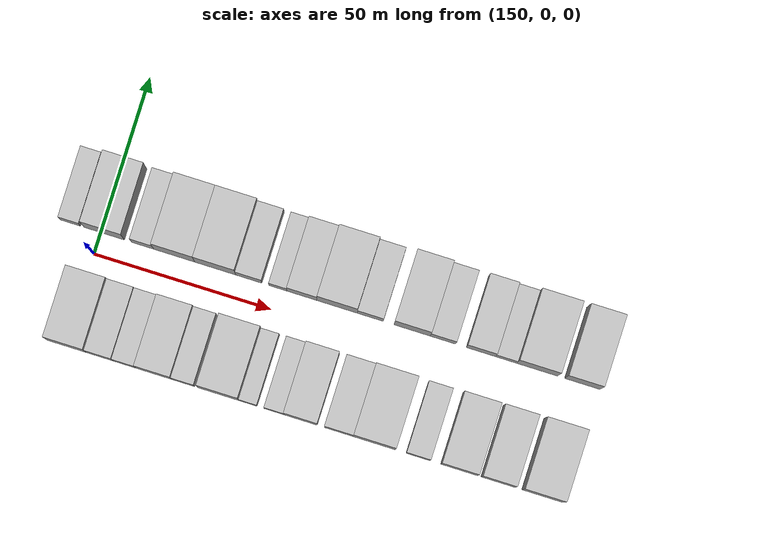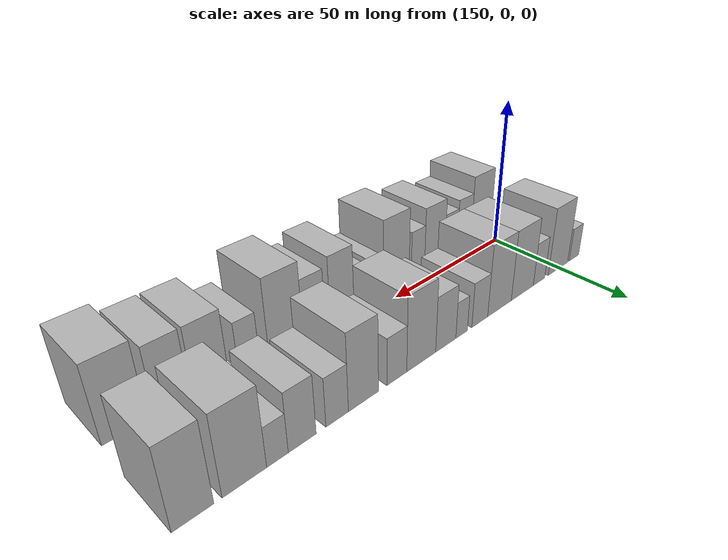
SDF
<sdf version="1.6">
 <world name="default">
  <model name="building_16">
   <static>1</static>
   <pose>141.3605 16.0000 0 0.000000 0.000000 1.570796</pose>
   <link name="link">
    <pose>0 0 6.00 0 0 0</pose>
    <collision name="collision"><geometry><box><size>20.0000 5.8034 12.0000</size></box></geometry></collision>
    <visual name="visual">
     <cast_shadows>0</cast_shadows>
     <geometry><box><size>20.0000 5.8034 12.0000</size></box></geometry>
     <material>
      <script>
       <uri>model://HANNAS_wall/materials/scripts</uri>
       <uri>model://HANNAS_wall/materials/textures</uri>
       <name>vrc/HANNAS_wall</name>
      </script>
     </material>
    </visual>
   </link>
  </model>
  <model name="building_17">
   <static>1</static>
   <pose>150.9504 16.0000 0 0.000000 0.000000 1.570796</pose>
   <link name="link">
    <pose>0 0 12.00 0 0 0</pose>
    <collision name="collision"><geometry><box><size>20.0000 11.3764 24.0000</size></box></geometry></collision>
    <visual name="visual">
     <cast_shadows>0</cast_shadows>
     <geometry><box><size>20.0000 11.3764 24.0000</size></box></geometry>
     <material>
      <script>
       <uri>model://HANNAS_wall/materials/scripts</uri>
       <uri>model://HANNAS_wall/materials/textures</uri>
       <name>vrc/HANNAS_wall</name>
      </script>
     </material>
    </visual>
   </link>
  </model>
  <model name="building_18">
   <static>1</static>
   <pose>161.7898 16.0000 0 0.000000 0.000000 1.570796</pose>
   <link name="link">
    <pose>0 0 7.50 0 0 0</pose>
    <collision name="collision"><geometry><box><size>20.0000 6.3024 15.0000</size></box></geometry></collision>
    <visual name="visual">
     <cast_shadows>0</cast_shadows>
     <geometry><box><size>20.0000 6.3024 15.0000</size></box></geometry>
     <material>
      <script>
       <uri>model://HANNAS_wall/materials/scripts</uri>
       <uri>model://HANNAS_wall/materials/textures</uri>
       <name>vrc/HANNAS_wall</name>
      </script>
     </material>
    </visual>
   </link>
  </model>
  <model name="building_19">
   <static>1</static>
   <pose>170.7327 16.0000 0 0.000000 0.000000 1.570796</pose>
   <link name="link">
    <pose>0 0 12.00 0 0 0</pose>
    <collision name="collision"><geometry><box><size>20.0000 11.5834 24.0000</size></box></geometry></collision>
    <visual name="visual">
     <cast_shadows>0</cast_shadows>
     <geometry><box><size>20.0000 11.5834 24.0000</size></box></geometry>
     <material>
      <script>
       <uri>model://HANNAS_wall/materials/scripts</uri>
       <uri>model://HANNAS_wall/materials/textures</uri>
       <name>vrc/HANNAS_wall</name>
      </script>
     </material>
    </visual>
   </link>
  </model>
  <model name="building_20">
   <static>1</static>
   <pose>182.3128 16.0000 0 0.000000 0.000000 1.570796</pose>
   <link name="link">
    <pose>0 0 12.00 0 0 0</pose>
    <collision name="collision"><geometry><box><size>20.0000 11.5768 24.0000</size></box></geometry></collision>
    <visual name="visual">
     <cast_shadows>0</cast_shadows>
     <geometry><box><size>20.0000 11.5768 24.0000</size></box></geometry>
     <material>
      <script>
       <uri>model://HANNAS_wall/materials/scripts</uri>
       <uri>model://HANNAS_wall/materials/textures</uri>
       <name>vrc/HANNAS_wall</name>
      </script>
     </material>
    </visual>
   </link>
  </model>
  <model name="building_21">
   <static>1</static>
   <pose>191.7797 16.0000 0 0.000000 0.000000 1.570796</pose>
   <link name="link">
    <pose>0 0 7.50 0 0 0</pose>
    <collision name="collision"><geometry><box><size>20.0000 7.3570 15.0000</size></box></geometry></collision>
    <visual name="visual">
     <cast_shadows>0</cast_shadows>
     <geometry><box><size>20.0000 7.3570 15.0000</size></box></geometry>
     <material>
      <script>
       <uri>model://HANNAS_wall/materials/scripts</uri>
       <uri>model://HANNAS_wall/materials/textures</uri>
       <name>vrc/HANNAS_wall</name>
      </script>
     </material>
    </visual>
   </link>
  </model>
  <model name="building_22">
   <static>1</static>
   <pose>199.9924 16.0000 0 0.000000 0.000000 1.570796</pose>
   <link name="link">
    <pose>0 0 6.00 0 0 0</pose>
    <collision name="collision"><geometry><box><size>20.0000 5.0683 12.0000</size></box></geometry></collision>
    <visual name="visual">
     <cast_shadows>0</cast_shadows>
     <geometry><box><size>20.0000 5.0683 12.0000</size></box></geometry>
     <material>
      <script>
       <uri>model://HANNAS_wall/materials/scripts</uri>
       <uri>model://HANNAS_wall/materials/textures</uri>
       <name>vrc/HANNAS_wall</name>
      </script>
     </material>
    </visual>
   </link>
  </model>
  <model name="building_23">
   <static>1</static>
   <pose>206.7731 16.0000 0 0.000000 0.000000 1.570796</pose>
   <link name="link">
    <pose>0 0 9.00 0 0 0</pose>
    <collision name="collision"><geometry><box><size>20.0000 8.4931 18.0000</size></box></geometry></collision>
    <visual name="visual">
     <cast_shadows>0</cast_shadows>
     <geometry><box><size>20.0000 8.4931 18.0000</size></box></geometry>
     <material>
      <script>
       <uri>model://HANNAS_wall/materials/scripts</uri>
       <uri>model://HANNAS_wall/materials/textures</uri>
       <name>vrc/HANNAS_wall</name>
      </script>
     </material>
    </visual>
   </link>
  </model>
  <model name="building_24">
   <static>1</static>
   <pose>216.7002 16.0000 0 0.000000 0.000000 1.570796</pose>
   <link name="link">
    <pose>0 0 12.00 0 0 0</pose>
    <collision name="collision"><geometry><box><size>20.0000 11.3611 24.0000</size></box></geometry></collision>
    <visual name="visual">
     <cast_shadows>0</cast_shadows>
     <geometry><box><size>20.0000 11.3611 24.0000</size></box></geometry>
     <material>
      <script>
       <uri>model://HANNAS_wall/materials/scripts</uri>
       <uri>model://HANNAS_wall/materials/textures</uri>
       <name>vrc/HANNAS_wall</name>
      </script>
     </material>
    </visual>
   </link>
  </model>
  <model name="building_25">
   <static>1</static>
   <pose>226.0487 16.0000 0 0.000000 0.000000 1.570796</pose>
   <link name="link">
    <pose>0 0 7.50 0 0 0</pose>
    <collision name="collision"><geometry><box><size>20.0000 7.3358 15.0000</size></box></geometry></collision>
    <visual name="visual">
     <cast_shadows>0</cast_shadows>
     <geometry><box><size>20.0000 7.3358 15.0000</size></box></geometry>
     <material>
      <script>
       <uri>model://HANNAS_wall/materials/scripts</uri>
       <uri>model://HANNAS_wall/materials/textures</uri>
       <name>vrc/HANNAS_wall</name>
      </script>
     </material>
    </visual>
   </link>
  </model>
  <model name="building_26">
   <static>1</static>
   <pose>237.8275 16.0000 0 0.000000 0.000000 1.570796</pose>
   <link name="link">
    <pose>0 0 12.00 0 0 0</pose>
    <collision name="collision"><geometry><box><size>20.0000 10.2218 24.0000</size></box></geometry></collision>
    <visual name="visual">
     <cast_shadows>0</cast_shadows>
     <geometry><box><size>20.0000 10.2218 24.0000</size></box></geometry>
     <material>
      <script>
       <uri>model://HANNAS_wall/materials/scripts</uri>
       <uri>model://HANNAS_wall/materials/textures</uri>
       <name>vrc/HANNAS_wall</name>
      </script>
     </material>
    </visual>
   </link>
  </model>
  <model name="building_27">
   <static>1</static>
   <pose>246.5218 16.0000 0 0.000000 0.000000 1.570796</pose>
   <link name="link">
    <pose>0 0 7.50 0 0 0</pose>
    <collision name="collision"><geometry><box><size>20.0000 7.1667 15.0000</size></box></geometry></collision>
    <visual name="visual">
     <cast_shadows>0</cast_shadows>
     <geometry><box><size>20.0000 7.1667 15.0000</size></box></geometry>
     <material>
      <script>
       <uri>model://HANNAS_wall/materials/scripts</uri>
       <uri>model://HANNAS_wall/materials/textures</uri>
       <name>vrc/HANNAS_wall</name>
      </script>
     </material>
    </visual>
   </link>
  </model>
  <model name="building_28">
   <static>1</static>
   <pose>257.1931 16.0000 0 0.000000 0.000000 1.570796</pose>
   <link name="link">
    <pose>0 0 9.00 0 0 0</pose>
    <collision name="collision"><geometry><box><size>20.0000 8.1760 18.0000</size></box></geometry></collision>
    <visual name="visual">
     <cast_shadows>0</cast_shadows>
     <geometry><box><size>20.0000 8.1760 18.0000</size></box></geometry>
     <material>
      <script>
       <uri>model://HANNAS_wall/materials/scripts</uri>
       <uri>model://HANNAS_wall/materials/textures</uri>
       <name>vrc/HANNAS_wall</name>
      </script>
     </material>
    </visual>
   </link>
  </model>
  <model name="building_29">
   <static>1</static>
   <pose>264.2778 16.0000 0 0.000000 0.000000 1.570796</pose>
   <link name="link">
    <pose>0 0 6.00 0 0 0</pose>
    <collision name="collision"><geometry><box><size>20.0000 5.9934 12.0000</size></box></geometry></collision>
    <visual name="visual">
     <cast_shadows>0</cast_shadows>
     <geometry><box><size>20.0000 5.9934 12.0000</size></box></geometry>
     <material>
      <script>
       <uri>model://HANNAS_wall/materials/scripts</uri>
       <uri>model://HANNAS_wall/materials/textures</uri>
       <name>vrc/HANNAS_wall</name>
      </script>
     </material>
    </visual>
   </link>
  </model>
  <model name="building_30">
   <static>1</static>
   <pose>273.0438 16.0000 0 0.000000 0.000000 1.570796</pose>
   <link name="link">
    <pose>0 0 12.00 0 0 0</pose>
    <collision name="collision"><geometry><box><size>20.0000 11.5386 24.0000</size></box></geometry></collision>
    <visual name="visual">
     <cast_shadows>0</cast_shadows>
     <geometry><box><size>20.0000 11.5386 24.0000</size></box></geometry>
     <material>
      <script>
       <uri>model://HANNAS_wall/materials/scripts</uri>
       <uri>model://HANNAS_wall/materials/textures</uri>
       <name>vrc/HANNAS_wall</name>
      </script>
     </material>
    </visual>
   </link>
  </model>
  <model name="building_31">
   <static>1</static>
   <pose>285.7618 16.0000 0 0.000000 0.000000 1.570796</pose>
   <link name="link">
    <pose>0 0 12.00 0 0 0</pose>
    <collision name="collision"><geometry><box><size>20.0000 9.8973 24.0000</size></box></geometry></collision>
    <visual name="visual">
     <cast_shadows>0</cast_shadows>
     <geometry><box><size>20.0000 9.8973 24.0000</size></box></geometry>
     <material>
      <script>
       <uri>model://HANNAS_wall/materials/scripts</uri>
       <uri>model://HANNAS_wall/materials/textures</uri>
       <name>vrc/HANNAS_wall</name>
      </script>
     </material>
    </visual>
   </link>
  </model>
  <model name="building_46">
   <static>1</static>
   <pose>150.7039 -16.0000 0 0.000000 0.000000 1.570796</pose>
   <link name="link">
    <pose>0 0 12.00 0 0 0</pose>
    <collision name="collision"><geometry><box><size>20.0000 11.0838 24.0000</size></box></geometry></collision>
    <visual name="visual">
     <cast_shadows>0</cast_shadows>
     <geometry><box><size>20.0000 11.0838 24.0000</size></box></geometry>
     <material>
      <script>
       <uri>model://HANNAS_wall/materials/scripts</uri>
       <uri>model://HANNAS_wall/materials/textures</uri>
       <name>vrc/HANNAS_wall</name>
      </script>
     </material>
    </visual>
   </link>
  </model>
  <model name="building_47">
   <static>1</static>
   <pose>160.0015 -16.0000 0 0.000000 0.000000 1.570796</pose>
   <link name="link">
    <pose>0 0 9.00 0 0 0</pose>
    <collision name="collision"><geometry><box><size>20.0000 7.5114 18.0000</size></box></geometry></collision>
    <visual name="visual">
     <cast_shadows>0</cast_shadows>
     <geometry><box><size>20.0000 7.5114 18.0000</size></box></geometry>
     <material>
      <script>
       <uri>model://HANNAS_wall/materials/scripts</uri>
       <uri>model://HANNAS_wall/materials/textures</uri>
       <name>vrc/HANNAS_wall</name>
      </script>
     </material>
    </visual>
   </link>
  </model>
  <model name="building_48">
   <static>1</static>
   <pose>166.9920 -16.0000 0 0.000000 0.000000 1.570796</pose>
   <link name="link">
    <pose>0 0 7.50 0 0 0</pose>
    <collision name="collision"><geometry><box><size>20.0000 6.4696 15.0000</size></box></geometry></collision>
    <visual name="visual">
     <cast_shadows>0</cast_shadows>
     <geometry><box><size>20.0000 6.4696 15.0000</size></box></geometry>
     <material>
      <script>
       <uri>model://HANNAS_wall/materials/scripts</uri>
       <uri>model://HANNAS_wall/materials/textures</uri>
       <name>vrc/HANNAS_wall</name>
      </script>
     </material>
    </visual>
   </link>
  </model>
  <model name="building_49">
   <static>1</static>
   <pose>175.2522 -16.0000 0 0.000000 0.000000 1.570796</pose>
   <link name="link">
    <pose>0 0 10.50 0 0 0</pose>
    <collision name="collision"><geometry><box><size>20.0000 10.0508 21.0000</size></box></geometry></collision>
    <visual name="visual">
     <cast_shadows>0</cast_shadows>
     <geometry><box><size>20.0000 10.0508 21.0000</size></box></geometry>
     <material>
      <script>
       <uri>model://HANNAS_wall/materials/scripts</uri>
       <uri>model://HANNAS_wall/materials/textures</uri>
       <name>vrc/HANNAS_wall</name>
      </script>
     </material>
    </visual>
   </link>
  </model>
  <model name="building_50">
   <static>1</static>
   <pose>183.4634 -16.0000 0 0.000000 0.000000 1.570796</pose>
   <link name="link">
    <pose>0 0 7.50 0 0 0</pose>
    <collision name="collision"><geometry><box><size>20.0000 6.3716 15.0000</size></box></geometry></collision>
    <visual name="visual">
     <cast_shadows>0</cast_shadows>
     <geometry><box><size>20.0000 6.3716 15.0000</size></box></geometry>
     <material>
      <script>
       <uri>model://HANNAS_wall/materials/scripts</uri>
       <uri>model://HANNAS_wall/materials/textures</uri>
       <name>vrc/HANNAS_wall</name>
      </script>
     </material>
    </visual>
   </link>
  </model>
  <model name="building_51">
   <static>1</static>
   <pose>193.3978 -16.0000 0 0.000000 0.000000 1.570796</pose>
   <link name="link">
    <pose>0 0 12.00 0 0 0</pose>
    <collision name="collision"><geometry><box><size>20.0000 11.4972 24.0000</size></box></geometry></collision>
    <visual name="visual">
     <cast_shadows>0</cast_shadows>
     <geometry><box><size>20.0000 11.4972 24.0000</size></box></geometry>
     <material>
      <script>
       <uri>model://HANNAS_wall/materials/scripts</uri>
       <uri>model://HANNAS_wall/materials/textures</uri>
       <name>vrc/HANNAS_wall</name>
      </script>
     </material>
    </visual>
   </link>
  </model>
  <model name="building_52">
   <static>1</static>
   <pose>201.6903 -16.0000 0 0.000000 0.000000 1.570796</pose>
   <link name="link">
    <pose>0 0 6.00 0 0 0</pose>
    <collision name="collision"><geometry><box><size>20.0000 5.0877 12.0000</size></box></geometry></collision>
    <visual name="visual">
     <cast_shadows>0</cast_shadows>
     <geometry><box><size>20.0000 5.0877 12.0000</size></box></geometry>
     <material>
      <script>
       <uri>model://HANNAS_wall/materials/scripts</uri>
       <uri>model://HANNAS_wall/materials/textures</uri>
       <name>vrc/HANNAS_wall</name>
      </script>
     </material>
    </visual>
   </link>
  </model>
  <model name="building_53">
   <static>1</static>
   <pose>209.0036 -16.0000 0 0.000000 0.000000 1.570796</pose>
   <link name="link">
    <pose>0 0 6.00 0 0 0</pose>
    <collision name="collision"><geometry><box><size>20.0000 5.5390 12.0000</size></box></geometry></collision>
    <visual name="visual">
     <cast_shadows>0</cast_shadows>
     <geometry><box><size>20.0000 5.5390 12.0000</size></box></geometry>
     <material>
      <script>
       <uri>model://HANNAS_wall/materials/scripts</uri>
       <uri>model://HANNAS_wall/materials/textures</uri>
       <name>vrc/HANNAS_wall</name>
      </script>
     </material>
    </visual>
   </link>
  </model>
  <model name="building_54">
   <static>1</static>
   <pose>216.4703 -16.0000 0 0.000000 0.000000 1.570796</pose>
   <link name="link">
    <pose>0 0 10.50 0 0 0</pose>
    <collision name="collision"><geometry><box><size>20.0000 9.3943 21.0000</size></box></geometry></collision>
    <visual name="visual">
     <cast_shadows>0</cast_shadows>
     <geometry><box><size>20.0000 9.3943 21.0000</size></box></geometry>
     <material>
      <script>
       <uri>model://HANNAS_wall/materials/scripts</uri>
       <uri>model://HANNAS_wall/materials/textures</uri>
       <name>vrc/HANNAS_wall</name>
      </script>
     </material>
    </visual>
   </link>
  </model>
  <model name="building_55">
   <static>1</static>
   <pose>227.2381 -16.0000 0 0.000000 0.000000 1.570796</pose>
   <link name="link">
    <pose>0 0 9.00 0 0 0</pose>
    <collision name="collision"><geometry><box><size>20.0000 8.1414 18.0000</size></box></geometry></collision>
    <visual name="visual">
     <cast_shadows>0</cast_shadows>
     <geometry><box><size>20.0000 8.1414 18.0000</size></box></geometry>
     <material>
      <script>
       <uri>model://HANNAS_wall/materials/scripts</uri>
       <uri>model://HANNAS_wall/materials/textures</uri>
       <name>vrc/HANNAS_wall</name>
      </script>
     </material>
    </visual>
   </link>
  </model>
  <model name="building_56">
   <static>1</static>
   <pose>237.2337 -16.0000 0 0.000000 0.000000 1.570796</pose>
   <link name="link">
    <pose>0 0 12.00 0 0 0</pose>
    <collision name="collision"><geometry><box><size>20.0000 11.8498 24.0000</size></box></geometry></collision>
    <visual name="visual">
     <cast_shadows>0</cast_shadows>
     <geometry><box><size>20.0000 11.8498 24.0000</size></box></geometry>
     <material>
      <script>
       <uri>model://HANNAS_wall/materials/scripts</uri>
       <uri>model://HANNAS_wall/materials/textures</uri>
       <name>vrc/HANNAS_wall</name>
      </script>
     </material>
    </visual>
   </link>
  </model>
  <model name="building_57">
   <static>1</static>
   <pose>249.5297 -16.0000 0 0.000000 0.000000 1.570796</pose>
   <link name="link">
    <pose>0 0 7.50 0 0 0</pose>
    <collision name="collision"><geometry><box><size>20.0000 6.7421 15.0000</size></box></geometry></collision>
    <visual name="visual">
     <cast_shadows>0</cast_shadows>
     <geometry><box><size>20.0000 6.7421 15.0000</size></box></geometry>
     <material>
      <script>
       <uri>model://HANNAS_wall/materials/scripts</uri>
       <uri>model://HANNAS_wall/materials/textures</uri>
       <name>vrc/HANNAS_wall</name>
      </script>
     </material>
    </visual>
   </link>
  </model>
  <model name="building_58">
   <static>1</static>
   <pose>261.0687 -16.0000 0 0.000000 0.000000 1.570796</pose>
   <link name="link">
    <pose>0 0 10.50 0 0 0</pose>
    <collision name="collision"><geometry><box><size>20.0000 10.3360 21.0000</size></box></geometry></collision>
    <visual name="visual">
     <cast_shadows>0</cast_shadows>
     <geometry><box><size>20.0000 10.3360 21.0000</size></box></geometry>
     <material>
      <script>
       <uri>model://HANNAS_wall/materials/scripts</uri>
       <uri>model://HANNAS_wall/materials/textures</uri>
       <name>vrc/HANNAS_wall</name>
      </script>
     </material>
    </visual>
   </link>
  </model>
  <model name="building_59">
   <static>1</static>
   <pose>271.9809 -16.0000 0 0.000000 0.000000 1.570796</pose>
   <link name="link">
    <pose>0 0 10.50 0 0 0</pose>
    <collision name="collision"><geometry><box><size>20.0000 9.4883 21.0000</size></box></geometry></collision>
    <visual name="visual">
     <cast_shadows>0</cast_shadows>
     <geometry><box><size>20.0000 9.4883 21.0000</size></box></geometry>
     <material>
      <script>
       <uri>model://HANNAS_wall/materials/scripts</uri>
       <uri>model://HANNAS_wall/materials/textures</uri>
       <name>vrc/HANNAS_wall</name>
      </script>
     </material>
    </visual>
   </link>
  </model>
  <model name="building_60">
   <static>1</static>
   <pose>284.4816 -16.0000 0 0.000000 0.000000 1.570796</pose>
   <link name="link">
    <pose>0 0 12.00 0 0 0</pose>
    <collision name="collision"><geometry><box><size>20.0000 11.5131 24.0000</size></box></geometry></collision>
    <visual name="visual">
     <cast_shadows>0</cast_shadows>
     <geometry><box><size>20.0000 11.5131 24.0000</size></box></geometry>
     <material>
      <script>
       <uri>model://HANNAS_wall/materials/scripts</uri>
       <uri>model://HANNAS_wall/materials/textures</uri>
       <name>vrc/HANNAS_wall</name>
      </script>
     </material>
    </visual>
   </link>
  </model>
 </world>
</sdf>
